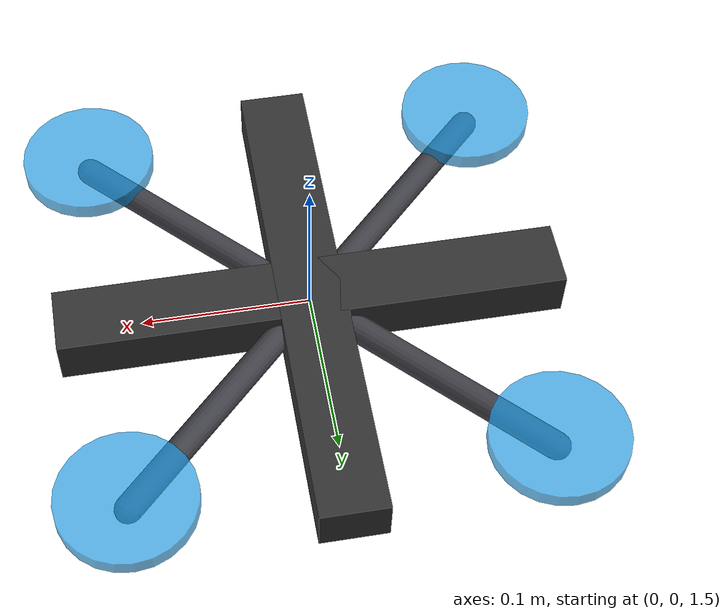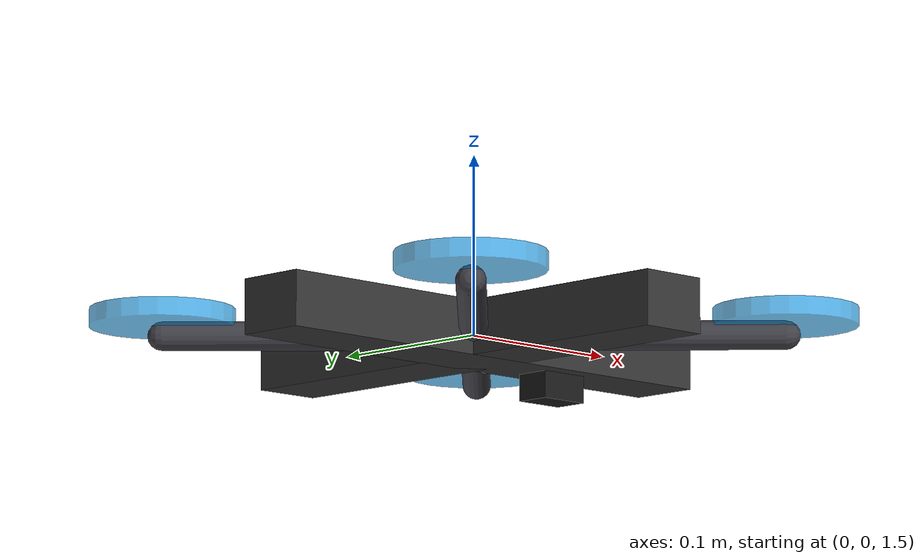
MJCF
<mujoco model="generic_drone">
  <compiler angle="radian"/>

  <option timestep="0.002" gravity="0 0 -9.81"/>

  <default>
    <geom rgba="0.3 0.3 0.3 1"/>
  </default>

  <worldbody>
    <light diffuse="0.8 0.8 0.8" pos="0 0 5" dir="0 0 -1"/>
    <geom type="plane" size="50 50 0.1" rgba="0.15 0.18 0.15 1"/>

    <body name="drone" pos="0 0 1.5">
      <freejoint name="root"/>
      <inertial pos="0 0 0" mass="1.5" diaginertia="0.02 0.02 0.04"/>

      <!-- Frame -->
      <geom type="box" size="0.15 0.02 0.015" rgba="0.2 0.2 0.2 1"/>
      <geom type="box" size="0.02 0.15 0.015" rgba="0.2 0.2 0.2 1"/>

      <!-- Arms -->
      <geom type="capsule" fromto="0 0 0 0.12 0.12 0" size="0.008" rgba="0.25 0.25 0.28 1"/>
      <geom type="capsule" fromto="0 0 0 -0.12 0.12 0" size="0.008" rgba="0.25 0.25 0.28 1"/>
      <geom type="capsule" fromto="0 0 0 0.12 -0.12 0" size="0.008" rgba="0.25 0.25 0.28 1"/>
      <geom type="capsule" fromto="0 0 0 -0.12 -0.12 0" size="0.008" rgba="0.25 0.25 0.28 1"/>

      <!-- Motors (visual) -->
      <geom type="cylinder" pos="0.12 0.12 0.01" size="0.04 0.005" rgba="0.1 0.6 0.9 0.7"/>
      <geom type="cylinder" pos="-0.12 0.12 0.01" size="0.04 0.005" rgba="0.1 0.6 0.9 0.7"/>
      <geom type="cylinder" pos="0.12 -0.12 0.01" size="0.04 0.005" rgba="0.1 0.6 0.9 0.7"/>
      <geom type="cylinder" pos="-0.12 -0.12 0.01" size="0.04 0.005" rgba="0.1 0.6 0.9 0.7"/>

      <!-- Camera mount -->
      <geom type="box" pos="0.06 0 -0.02" size="0.015 0.01 0.01" rgba="0.1 0.1 0.1 1"/>

      <!-- Thrust application sites -->
      <site name="thrust_fr" pos="0.12 -0.12 0" size="0.005"/>
      <site name="thrust_fl" pos="-0.12 -0.12 0" size="0.005"/>
      <site name="thrust_br" pos="0.12 0.12 0" size="0.005"/>
      <site name="thrust_bl" pos="-0.12 0.12 0" size="0.005"/>

      <!-- IMU sensor site -->
      <site name="imu" pos="0 0 0" size="0.005"/>
    </body>
  </worldbody>

  <actuator>
    <motor name="thrust_fr" site="thrust_fr" gear="0 0 1 0 0 0" ctrlrange="0 15" ctrllimited="true"/>
    <motor name="thrust_fl" site="thrust_fl" gear="0 0 1 0 0 0" ctrlrange="0 15" ctrllimited="true"/>
    <motor name="thrust_br" site="thrust_br" gear="0 0 1 0 0 0" ctrlrange="0 15" ctrllimited="true"/>
    <motor name="thrust_bl" site="thrust_bl" gear="0 0 1 0 0 0" ctrlrange="0 15" ctrllimited="true"/>
  </actuator>

  <keyframe>
    <key name="home" qpos="0 0 1.5 1 0 0 0"/>
  </keyframe>
</mujoco>
